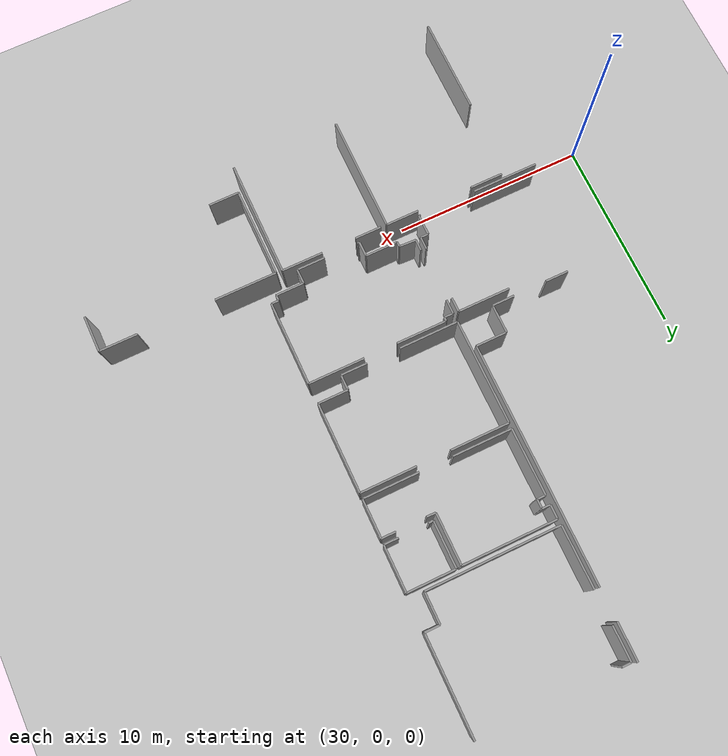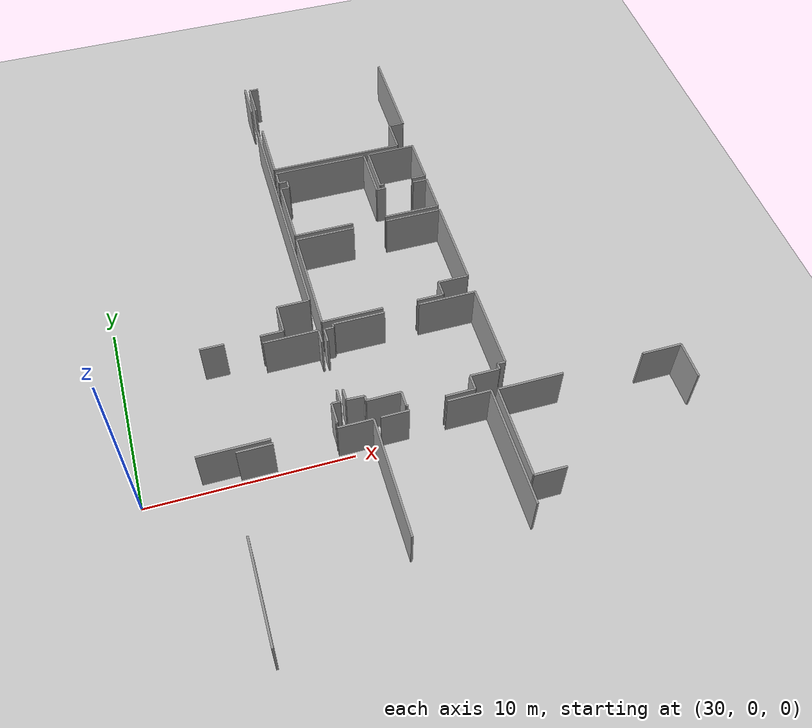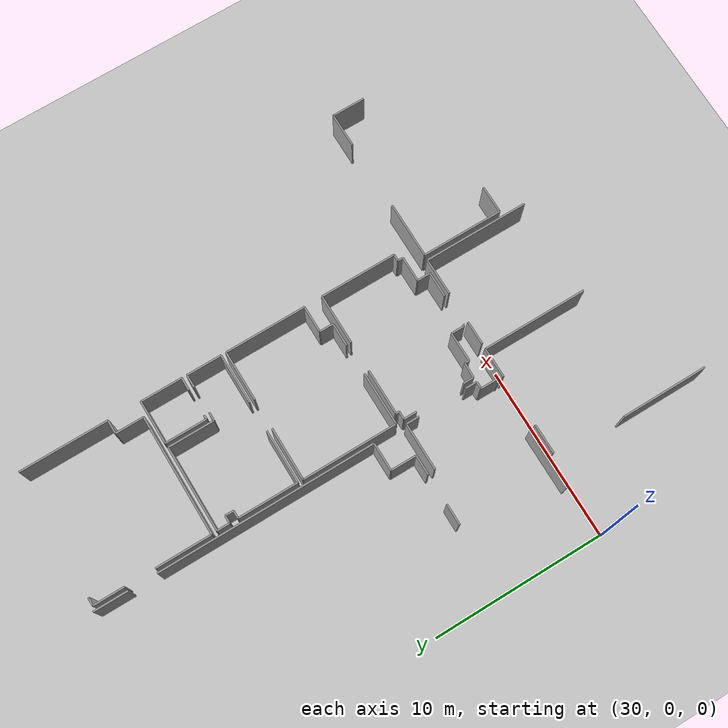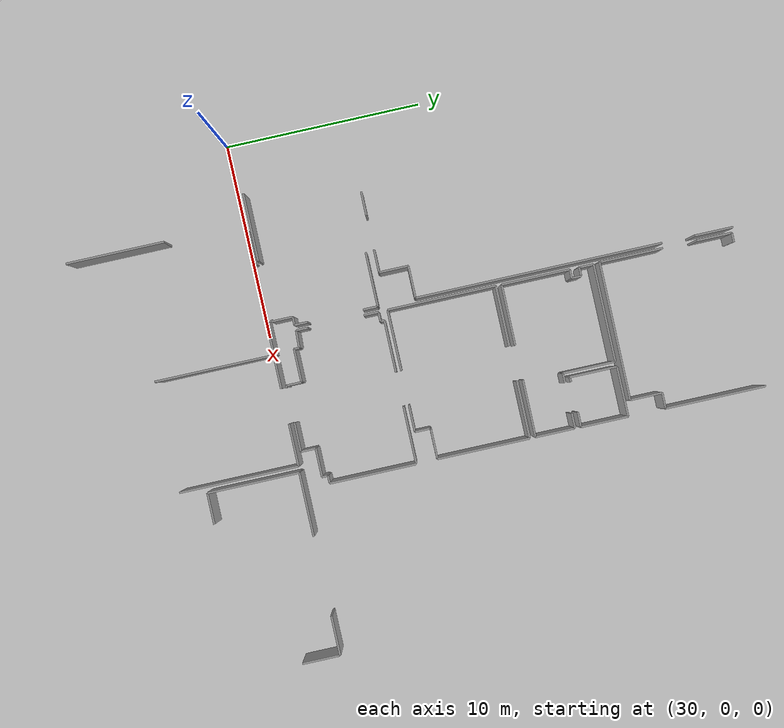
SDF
<sdf version="1.6">
 <world name="default">
  <model name="ground_plane">
   <static>1</static>
   <link name="link">
    <collision name="collision">
     <geometry><plane><normal>0 0 1</normal><size>100 100</size></plane></geometry>
     <surface><friction><ode><mu>100</mu><mu2>50</mu2></ode></friction></surface>
    </collision>
    <visual name="visual">
     <cast_shadows>0</cast_shadows>
     <geometry><plane><normal>0 0 1</normal><size>100 100</size></plane></geometry>
     <material>
      <script><uri>file://media/materials/scripts/gazebo.material</uri><name>Gazebo/Grey</name></script>
     </material>
    </visual>
   </link>
  </model>
  <model name="50057022">
   <static>1</static>
   <link name="Wall_114">
    <collision name="Wall_114_Collision">
     <geometry><box><size>3.20877912031 0.1 2.5</size></box></geometry>
     <pose>1.60438956016 0 1.25 0 0 0</pose>
    </collision>
    <visual name="Wall_114_Visual">
     <pose>1.60438956016 0 1.25 0 0 0</pose>
     <geometry><box><size>3.20877912031 0.1 2.5</size></box></geometry>
     <material>
      <script><uri>file://media/materials/scripts/gazebo.material</uri><name>Gazebo/Grey</name></script>
      <ambient>1 1 1 1</ambient>
     </material>
    </visual>
    <pose>96.568168972 -6.86328185397 0 0 0 1.57079632679</pose>
   </link>
   <link name="Wall_115">
    <collision name="Wall_115_Collision">
     <geometry><box><size>1.77326266643 0.1 2.5</size></box></geometry>
     <pose>0.886631333217 0 1.25 0 0 0</pose>
    </collision>
    <visual name="Wall_115_Visual">
     <pose>0.886631333217 0 1.25 0 0 0</pose>
     <geometry><box><size>1.77326266643 0.1 2.5</size></box></geometry>
     <material>
      <script><uri>file://media/materials/scripts/gazebo.material</uri><name>Gazebo/Grey</name></script>
      <ambient>1 1 1 1</ambient>
     </material>
    </visual>
    <pose>96.568168972 -1.93497529954 0 0 0 1.57079632679</pose>
   </link>
   <link name="Wall_116">
    <collision name="Wall_116_Collision">
     <geometry><box><size>0.474238771998 0.1 2.5</size></box></geometry>
     <pose>0.237119385999 0 1.25 0 0 0</pose>
    </collision>
    <visual name="Wall_116_Visual">
     <pose>0.237119385999 0 1.25 0 0 0</pose>
     <geometry><box><size>0.474238771998 0.1 2.5</size></box></geometry>
     <material>
      <script><uri>file://media/materials/scripts/gazebo.material</uri><name>Gazebo/Grey</name></script>
      <ambient>1 1 1 1</ambient>
     </material>
    </visual>
    <pose>96.568168972 -0.161712633102 0 0 0 0.0</pose>
   </link>
   <link name="Wall_117">
    <collision name="Wall_117_Collision">
     <geometry><box><size>5.08507656003 0.1 2.5</size></box></geometry>
     <pose>2.54253828002 0 1.25 0 0 0</pose>
    </collision>
    <visual name="Wall_117_Visual">
     <pose>2.54253828002 0 1.25 0 0 0</pose>
     <geometry><box><size>5.08507656003 0.1 2.5</size></box></geometry>
     <material>
      <script><uri>file://media/materials/scripts/gazebo.material</uri><name>Gazebo/Grey</name></script>
      <ambient>1 1 1 1</ambient>
     </material>
    </visual>
    <pose>104.33506452 -0.161712633102 0 0 0 -1.57079632679</pose>
   </link>
   <link name="Wall_118">
    <collision name="Wall_118_Collision">
     <geometry><box><size>0.788285719355 0.1 2.5</size></box></geometry>
     <pose>0.394142859678 0 1.25 0 0 0</pose>
    </collision>
    <visual name="Wall_118_Visual">
     <pose>0.394142859678 0 1.25 0 0 0</pose>
     <geometry><box><size>0.788285719355 0.1 2.5</size></box></geometry>
     <material>
      <script><uri>file://media/materials/scripts/gazebo.material</uri><name>Gazebo/Grey</name></script>
      <ambient>1 1 1 1</ambient>
     </material>
    </visual>
    <pose>104.33506452 -5.24678919314 0 0 0 3.14159265359</pose>
   </link>
   <link name="Wall_119">
    <collision name="Wall_119_Collision">
     <geometry><box><size>1.62574424564 0.1 2.5</size></box></geometry>
     <pose>0.81287212282 0 1.25 0 0 0</pose>
    </collision>
    <visual name="Wall_119_Visual">
     <pose>0.81287212282 0 1.25 0 0 0</pose>
     <geometry><box><size>1.62574424564 0.1 2.5</size></box></geometry>
     <material>
      <script><uri>file://media/materials/scripts/gazebo.material</uri><name>Gazebo/Grey</name></script>
      <ambient>1 1 1 1</ambient>
     </material>
    </visual>
    <pose>103.546778801 -5.24678919314 0 0 0 -1.57079632679</pose>
   </link>
   <link name="Wall_120">
    <collision name="Wall_120_Collision">
     <geometry><box><size>6.97861596142 0.1 2.5</size></box></geometry>
     <pose>3.48930798071 0 1.25 0 0 0</pose>
    </collision>
    <visual name="Wall_120_Visual">
     <pose>3.48930798071 0 1.25 0 0 0</pose>
     <geometry><box><size>6.97861596142 0.1 2.5</size></box></geometry>
     <material>
      <script><uri>file://media/materials/scripts/gazebo.material</uri><name>Gazebo/Grey</name></script>
      <ambient>1 1 1 1</ambient>
     </material>
    </visual>
    <pose>103.546778801 -6.87253343878 0 0 0 3.14026694838</pose>
   </link>
   <link name="Wall_124">
    <collision name="Wall_124_Collision">
     <geometry><box><size>1.95373193723 0.1 2.5</size></box></geometry>
     <pose>0.976865968616 0 1.25 0 0 0</pose>
    </collision>
    <visual name="Wall_124_Visual">
     <pose>0.976865968616 0 1.25 0 0 0</pose>
     <geometry><box><size>1.95373193723 0.1 2.5</size></box></geometry>
     <material>
      <script><uri>file://media/materials/scripts/gazebo.material</uri><name>Gazebo/Grey</name></script>
      <ambient>1 1 1 1</ambient>
     </material>
    </visual>
    <pose>96.3077305229 -0.0291488288508 0 0 0 -1.57079632679</pose>
   </link>
   <link name="Wall_125">
    <collision name="Wall_125_Collision">
     <geometry><box><size>12.5120714172 0.1 2.5</size></box></geometry>
     <pose>6.25603570858 0 1.25 0 0 0</pose>
    </collision>
    <visual name="Wall_125_Visual">
     <pose>6.25603570858 0 1.25 0 0 0</pose>
     <geometry><box><size>12.5120714172 0.1 2.5</size></box></geometry>
     <material>
      <script><uri>file://media/materials/scripts/gazebo.material</uri><name>Gazebo/Grey</name></script>
      <ambient>1 1 1 1</ambient>
     </material>
    </visual>
    <pose>96.3077305229 -3.62814205365 0 0 0 -1.57079632679</pose>
   </link>
   <link name="Wall_126">
    <collision name="Wall_126_Collision">
     <geometry><box><size>1.6278987243 0.1 2.5</size></box></geometry>
     <pose>0.813949362148 0 1.25 0 0 0</pose>
    </collision>
    <visual name="Wall_126_Visual">
     <pose>0.813949362148 0 1.25 0 0 0</pose>
     <geometry><box><size>1.6278987243 0.1 2.5</size></box></geometry>
     <material>
      <script><uri>file://media/materials/scripts/gazebo.material</uri><name>Gazebo/Grey</name></script>
      <ambient>1 1 1 1</ambient>
     </material>
    </visual>
    <pose>96.3077305229 -16.1402134708 0 0 0 3.14159265359</pose>
   </link>
   <link name="Wall_127">
    <collision name="Wall_127_Collision">
     <geometry><box><size>1.48278825023 0.1 2.5</size></box></geometry>
     <pose>0.741394125117 0 1.25 0 0 0</pose>
    </collision>
    <visual name="Wall_127_Visual">
     <pose>0.741394125117 0 1.25 0 0 0</pose>
     <geometry><box><size>1.48278825023 0.1 2.5</size></box></geometry>
     <material>
      <script><uri>file://media/materials/scripts/gazebo.material</uri><name>Gazebo/Grey</name></script>
      <ambient>1 1 1 1</ambient>
     </material>
    </visual>
    <pose>94.6798317986 -16.1402134708 0 0 0 -1.57079632679</pose>
   </link>
   <link name="Wall_128">
    <collision name="Wall_128_Collision">
     <geometry><box><size>1.15327975018 0.1 2.5</size></box></geometry>
     <pose>0.576639875091 0 1.25 0 0 0</pose>
    </collision>
    <visual name="Wall_128_Visual">
     <pose>0.576639875091 0 1.25 0 0 0</pose>
     <geometry><box><size>1.15327975018 0.1 2.5</size></box></geometry>
     <material>
      <script><uri>file://media/materials/scripts/gazebo.material</uri><name>Gazebo/Grey</name></script>
      <ambient>1 1 1 1</ambient>
     </material>
    </visual>
    <pose>94.6798317986 -17.623001721 0 0 0 3.14159265359</pose>
   </link>
   <link name="Wall_129">
    <collision name="Wall_129_Collision">
     <geometry><box><size>1.19827901955 0.1 2.5</size></box></geometry>
     <pose>0.599139509775 0 1.25 0 0 0</pose>
    </collision>
    <visual name="Wall_129_Visual">
     <pose>0.599139509775 0 1.25 0 0 0</pose>
     <geometry><box><size>1.19827901955 0.1 2.5</size></box></geometry>
     <material>
      <script><uri>file://media/materials/scripts/gazebo.material</uri><name>Gazebo/Grey</name></script>
      <ambient>1 1 1 1</ambient>
     </material>
    </visual>
    <pose>91.7787629237 -17.623001721 0 0 0 3.13778516273</pose>
   </link>
   <link name="Wall_130">
    <collision name="Wall_130_Collision">
     <geometry><box><size>3.45476988901 0.1 2.5</size></box></geometry>
     <pose>1.7273849445 0 1.25 0 0 0</pose>
    </collision>
    <visual name="Wall_130_Visual">
     <pose>1.7273849445 0 1.25 0 0 0</pose>
     <geometry><box><size>3.45476988901 0.1 2.5</size></box></geometry>
     <material>
      <script><uri>file://media/materials/scripts/gazebo.material</uri><name>Gazebo/Grey</name></script>
      <ambient>1 1 1 1</ambient>
     </material>
    </visual>
    <pose>96.5918682372 -11.8350581836 0 0 0 1.57079632679</pose>
   </link>
   <link name="Wall_131">
    <collision name="Wall_131_Collision">
     <geometry><box><size>0.444583006993 0.1 2.5</size></box></geometry>
     <pose>0.222291503497 0 1.25 0 0 0</pose>
    </collision>
    <visual name="Wall_131_Visual">
     <pose>0.222291503497 0 1.25 0 0 0</pose>
     <geometry><box><size>0.444583006993 0.1 2.5</size></box></geometry>
     <material>
      <script><uri>file://media/materials/scripts/gazebo.material</uri><name>Gazebo/Grey</name></script>
      <ambient>1 1 1 1</ambient>
     </material>
    </visual>
    <pose>96.5918682372 -8.38028829459 0 0 0 0.0</pose>
   </link>
   <link name="Wall_132">
    <collision name="Wall_132_Collision">
     <geometry><box><size>0.480955676037 0.1 2.5</size></box></geometry>
     <pose>0.240477838019 0 1.25 0 0 0</pose>
    </collision>
    <visual name="Wall_132_Visual">
     <pose>0.240477838019 0 1.25 0 0 0</pose>
     <geometry><box><size>0.480955676037 0.1 2.5</size></box></geometry>
     <material>
      <script><uri>file://media/materials/scripts/gazebo.material</uri><name>Gazebo/Grey</name></script>
      <ambient>1 1 1 1</ambient>
     </material>
    </visual>
    <pose>97.0364512441 -8.38028829459 0 0 0 1.57079632679</pose>
   </link>
   <link name="Wall_133">
    <collision name="Wall_133_Collision">
     <geometry><box><size>0.437232432761 0.1 2.5</size></box></geometry>
     <pose>0.218616216381 0 1.25 0 0 0</pose>
    </collision>
    <visual name="Wall_133_Visual">
     <pose>0.218616216381 0 1.25 0 0 0</pose>
     <geometry><box><size>0.437232432761 0.1 2.5</size></box></geometry>
     <material>
      <script><uri>file://media/materials/scripts/gazebo.material</uri><name>Gazebo/Grey</name></script>
      <ambient>1 1 1 1</ambient>
     </material>
    </visual>
    <pose>97.0364512441 -7.89933261855 0 0 0 3.14159265359</pose>
   </link>
   <link name="Wall_134">
    <collision name="Wall_134_Collision">
     <geometry><box><size>0.728720721269 0.1 2.5</size></box></geometry>
     <pose>0.364360360634 0 1.25 0 0 0</pose>
    </collision>
    <visual name="Wall_134_Visual">
     <pose>0.364360360634 0 1.25 0 0 0</pose>
     <geometry><box><size>0.728720721269 0.1 2.5</size></box></geometry>
     <material>
      <script><uri>file://media/materials/scripts/gazebo.material</uri><name>Gazebo/Grey</name></script>
      <ambient>1 1 1 1</ambient>
     </material>
    </visual>
    <pose>96.5992188114 -7.89933261855 0 0 0 1.57079632679</pose>
   </link>
   <link name="Wall_135">
    <collision name="Wall_135_Collision">
     <geometry><box><size>4.93160163943 0.1 2.5</size></box></geometry>
     <pose>2.46580081972 0 1.25 0 0 0</pose>
    </collision>
    <visual name="Wall_135_Visual">
     <pose>2.46580081972 0 1.25 0 0 0</pose>
     <geometry><box><size>4.93160163943 0.1 2.5</size></box></geometry>
     <material>
      <script><uri>file://media/materials/scripts/gazebo.material</uri><name>Gazebo/Grey</name></script>
      <ambient>1 1 1 1</ambient>
     </material>
    </visual>
    <pose>96.5992188114 -7.17061189728 0 0 0 0.0</pose>
   </link>
   <link name="Wall_136">
    <collision name="Wall_136_Collision">
     <geometry><box><size>2.65976726561 0.1 2.5</size></box></geometry>
     <pose>1.32988363281 0 1.25 0 0 0</pose>
    </collision>
    <visual name="Wall_136_Visual">
     <pose>1.32988363281 0 1.25 0 0 0</pose>
     <geometry><box><size>2.65976726561 0.1 2.5</size></box></geometry>
     <material>
      <script><uri>file://media/materials/scripts/gazebo.material</uri><name>Gazebo/Grey</name></script>
      <ambient>1 1 1 1</ambient>
     </material>
    </visual>
    <pose>101.530820451 -7.17061189728 0 0 0 -1.57079632679</pose>
   </link>
   <link name="Wall_137">
    <collision name="Wall_137_Collision">
     <geometry><box><size>0.483363622769 0.1 2.5</size></box></geometry>
     <pose>0.241681811384 0 1.25 0 0 0</pose>
    </collision>
    <visual name="Wall_137_Visual">
     <pose>0.241681811384 0 1.25 0 0 0</pose>
     <geometry><box><size>0.483363622769 0.1 2.5</size></box></geometry>
     <material>
      <script><uri>file://media/materials/scripts/gazebo.material</uri><name>Gazebo/Grey</name></script>
      <ambient>1 1 1 1</ambient>
     </material>
    </visual>
    <pose>101.530820451 -9.8303791629 0 0 0 0.0</pose>
   </link>
   <link name="Wall_138">
    <collision name="Wall_138_Collision">
     <geometry><box><size>0.749885305695 0.1 2.5</size></box></geometry>
     <pose>0.374942652848 0 1.25 0 0 0</pose>
    </collision>
    <visual name="Wall_138_Visual">
     <pose>0.374942652848 0 1.25 0 0 0</pose>
     <geometry><box><size>0.749885305695 0.1 2.5</size></box></geometry>
     <material>
      <script><uri>file://media/materials/scripts/gazebo.material</uri><name>Gazebo/Grey</name></script>
      <ambient>1 1 1 1</ambient>
     </material>
    </visual>
    <pose>103.564141364 -9.8303791629 0 0 0 0.0</pose>
   </link>
   <link name="Wall_139">
    <collision name="Wall_139_Collision">
     <geometry><box><size>2.00949491416 0.1 2.5</size></box></geometry>
     <pose>1.00474745708 0 1.25 0 0 0</pose>
    </collision>
    <visual name="Wall_139_Visual">
     <pose>1.00474745708 0 1.25 0 0 0</pose>
     <geometry><box><size>2.00949491416 0.1 2.5</size></box></geometry>
     <material>
      <script><uri>file://media/materials/scripts/gazebo.material</uri><name>Gazebo/Grey</name></script>
      <ambient>1 1 1 1</ambient>
     </material>
    </visual>
    <pose>104.31402667 -9.8303791629 0 0 0 -1.57079632679</pose>
   </link>
   <link name="Wall_140">
    <collision name="Wall_140_Collision">
     <geometry><box><size>2.90487089604 0.1 2.5</size></box></geometry>
     <pose>1.45243544802 0 1.25 0 0 0</pose>
    </collision>
    <visual name="Wall_140_Visual">
     <pose>1.45243544802 0 1.25 0 0 0</pose>
     <geometry><box><size>2.90487089604 0.1 2.5</size></box></geometry>
     <material>
      <script><uri>file://media/materials/scripts/gazebo.material</uri><name>Gazebo/Grey</name></script>
      <ambient>1 1 1 1</ambient>
     </material>
    </visual>
    <pose>104.31402667 -11.8398740771 0 0 0 3.14159265359</pose>
   </link>
   <link name="Wall_141">
    <collision name="Wall_141_Collision">
     <geometry><box><size>3.08471025596 0.1 2.5</size></box></geometry>
     <pose>1.54235512798 0 1.25 0 0 0</pose>
    </collision>
    <visual name="Wall_141_Visual">
     <pose>1.54235512798 0 1.25 0 0 0</pose>
     <geometry><box><size>3.08471025596 0.1 2.5</size></box></geometry>
     <material>
      <script><uri>file://media/materials/scripts/gazebo.material</uri><name>Gazebo/Grey</name></script>
      <ambient>1 1 1 1</ambient>
     </material>
    </visual>
    <pose>99.6765747338 -11.8398740771 0 0 0 3.14003143875</pose>
   </link>
   <link name="Wall_142">
    <collision name="Wall_142_Collision">
     <geometry><box><size>2.41491710327 0.1 2.5</size></box></geometry>
     <pose>1.20745855163 0 1.25 0 0 0</pose>
    </collision>
    <visual name="Wall_142_Visual">
     <pose>1.20745855163 0 1.25 0 0 0</pose>
     <geometry><box><size>2.41491710327 0.1 2.5</size></box></geometry>
     <material>
      <script><uri>file://media/materials/scripts/gazebo.material</uri><name>Gazebo/Grey</name></script>
      <ambient>1 1 1 1</ambient>
     </material>
    </visual>
    <pose>101.79252624 -9.55916832055 0 0 0 1.57079632679</pose>
   </link>
   <link name="Wall_143">
    <collision name="Wall_143_Collision">
     <geometry><box><size>2.52986487617 0.1 2.5</size></box></geometry>
     <pose>1.26493243808 0 1.25 0 0 0</pose>
    </collision>
    <visual name="Wall_143_Visual">
     <pose>1.26493243808 0 1.25 0 0 0</pose>
     <geometry><box><size>2.52986487617 0.1 2.5</size></box></geometry>
     <material>
      <script><uri>file://media/materials/scripts/gazebo.material</uri><name>Gazebo/Grey</name></script>
      <ambient>1 1 1 1</ambient>
     </material>
    </visual>
    <pose>101.79252624 -7.14425121728 0 0 0 0.0</pose>
   </link>
   <link name="Wall_144">
    <collision name="Wall_144_Collision">
     <geometry><box><size>2.38564154038 0.1 2.5</size></box></geometry>
     <pose>1.19282077019 0 1.25 0 0 0</pose>
    </collision>
    <visual name="Wall_144_Visual">
     <pose>1.19282077019 0 1.25 0 0 0</pose>
     <geometry><box><size>2.38564154038 0.1 2.5</size></box></geometry>
     <material>
      <script><uri>file://media/materials/scripts/gazebo.material</uri><name>Gazebo/Grey</name></script>
      <ambient>1 1 1 1</ambient>
     </material>
    </visual>
    <pose>104.322391116 -7.14425121728 0 0 0 -1.57079632679</pose>
   </link>
   <link name="Wall_145">
    <collision name="Wall_145_Collision">
     <geometry><box><size>0.747984295118 0.1 2.5</size></box></geometry>
     <pose>0.373992147559 0 1.25 0 0 0</pose>
    </collision>
    <visual name="Wall_145_Visual">
     <pose>0.373992147559 0 1.25 0 0 0</pose>
     <geometry><box><size>0.747984295118 0.1 2.5</size></box></geometry>
     <material>
      <script><uri>file://media/materials/scripts/gazebo.material</uri><name>Gazebo/Grey</name></script>
      <ambient>1 1 1 1</ambient>
     </material>
    </visual>
    <pose>104.322391116 -9.52989275766 0 0 0 3.14159265359</pose>
   </link>
   <link name="Wall_146">
    <collision name="Wall_146_Collision">
     <geometry><box><size>0.246216612026 0.1 2.5</size></box></geometry>
     <pose>0.123108306013 0 1.25 0 0 0</pose>
    </collision>
    <visual name="Wall_146_Visual">
     <pose>0.123108306013 0 1.25 0 0 0</pose>
     <geometry><box><size>0.246216612026 0.1 2.5</size></box></geometry>
     <material>
      <script><uri>file://media/materials/scripts/gazebo.material</uri><name>Gazebo/Grey</name></script>
      <ambient>1 1 1 1</ambient>
     </material>
    </visual>
    <pose>102.036996201 -9.52989275766 0 0 0 -3.02240903604</pose>
   </link>
   <link name="Wall_147">
    <collision name="Wall_147_Collision">
     <geometry><box><size>5.48302144086 0.1 2.5</size></box></geometry>
     <pose>2.74151072043 0 1.25 0 0 0</pose>
    </collision>
    <visual name="Wall_147_Visual">
     <pose>2.74151072043 0 1.25 0 0 0</pose>
     <geometry><box><size>5.48302144086 0.1 2.5</size></box></geometry>
     <material>
      <script><uri>file://media/materials/scripts/gazebo.material</uri><name>Gazebo/Grey</name></script>
      <ambient>1 1 1 1</ambient>
     </material>
    </visual>
    <pose>96.5794483014 -17.6184392957 0 0 0 1.57079632679</pose>
   </link>
   <link name="Wall_148">
    <collision name="Wall_148_Collision">
     <geometry><box><size>3.06214783779 0.1 2.5</size></box></geometry>
     <pose>1.5310739189 0 1.25 0 0 0</pose>
    </collision>
    <visual name="Wall_148_Visual">
     <pose>1.5310739189 0 1.25 0 0 0</pose>
     <geometry><box><size>3.06214783779 0.1 2.5</size></box></geometry>
     <material>
      <script><uri>file://media/materials/scripts/gazebo.material</uri><name>Gazebo/Grey</name></script>
      <ambient>1 1 1 1</ambient>
     </material>
    </visual>
    <pose>96.5794483014 -12.1354178548 0 0 0 0.0</pose>
   </link>
   <link name="Wall_149">
    <collision name="Wall_149_Collision">
     <geometry><box><size>2.92033244873 0.1 2.5</size></box></geometry>
     <pose>1.46016622436 0 1.25 0 0 0</pose>
    </collision>
    <visual name="Wall_149_Visual">
     <pose>1.46016622436 0 1.25 0 0 0</pose>
     <geometry><box><size>2.92033244873 0.1 2.5</size></box></geometry>
     <material>
      <script><uri>file://media/materials/scripts/gazebo.material</uri><name>Gazebo/Grey</name></script>
      <ambient>1 1 1 1</ambient>
     </material>
    </visual>
    <pose>101.396735838 -12.1354178548 0 0 0 0.0</pose>
   </link>
   <link name="Wall_150">
    <collision name="Wall_150_Collision">
     <geometry><box><size>4.67648601997 0.1 2.5</size></box></geometry>
     <pose>2.33824300998 0 1.25 0 0 0</pose>
    </collision>
    <visual name="Wall_150_Visual">
     <pose>2.33824300998 0 1.25 0 0 0</pose>
     <geometry><box><size>4.67648601997 0.1 2.5</size></box></geometry>
     <material>
      <script><uri>file://media/materials/scripts/gazebo.material</uri><name>Gazebo/Grey</name></script>
      <ambient>1 1 1 1</ambient>
     </material>
    </visual>
    <pose>104.317068287 -12.1354178548 0 0 0 -1.57079632679</pose>
   </link>
   <link name="Wall_151">
    <collision name="Wall_151_Collision">
     <geometry><box><size>1.55160483313 0.1 2.5</size></box></geometry>
     <pose>0.775802416565 0 1.25 0 0 0</pose>
    </collision>
    <visual name="Wall_151_Visual">
     <pose>0.775802416565 0 1.25 0 0 0</pose>
     <geometry><box><size>1.55160483313 0.1 2.5</size></box></geometry>
     <material>
      <script><uri>file://media/materials/scripts/gazebo.material</uri><name>Gazebo/Grey</name></script>
      <ambient>1 1 1 1</ambient>
     </material>
    </visual>
    <pose>104.317068287 -16.8119038748 0 0 0 3.14159265359</pose>
   </link>
   <link name="Wall_152">
    <collision name="Wall_152_Collision">
     <geometry><box><size>0.798424442434 0.1 2.5</size></box></geometry>
     <pose>0.399212221217 0 1.25 0 0 0</pose>
    </collision>
    <visual name="Wall_152_Visual">
     <pose>0.399212221217 0 1.25 0 0 0</pose>
     <geometry><box><size>0.798424442434 0.1 2.5</size></box></geometry>
     <material>
      <script><uri>file://media/materials/scripts/gazebo.material</uri><name>Gazebo/Grey</name></script>
      <ambient>1 1 1 1</ambient>
     </material>
    </visual>
    <pose>102.765463454 -16.8119038748 0 0 0 -1.57079632679</pose>
   </link>
   <link name="Wall_153">
    <collision name="Wall_153_Collision">
     <geometry><box><size>1.35960276483 0.1 2.5</size></box></geometry>
     <pose>0.679801382415 0 1.25 0 0 0</pose>
    </collision>
    <visual name="Wall_153_Visual">
     <pose>0.679801382415 0 1.25 0 0 0</pose>
     <geometry><box><size>1.35960276483 0.1 2.5</size></box></geometry>
     <material>
      <script><uri>file://media/materials/scripts/gazebo.material</uri><name>Gazebo/Grey</name></script>
      <ambient>1 1 1 1</ambient>
     </material>
    </visual>
    <pose>102.765463454 -17.6103283172 0 0 0 3.14159265359</pose>
   </link>
   <link name="Wall_154">
    <collision name="Wall_154_Collision">
     <geometry><box><size>3.08712509861 0.1 2.5</size></box></geometry>
     <pose>1.5435625493 0 1.25 0 0 0</pose>
    </collision>
    <visual name="Wall_154_Visual">
     <pose>1.5435625493 0 1.25 0 0 0</pose>
     <geometry><box><size>3.08712509861 0.1 2.5</size></box></geometry>
     <material>
      <script><uri>file://media/materials/scripts/gazebo.material</uri><name>Gazebo/Grey</name></script>
      <ambient>1 1 1 1</ambient>
     </material>
    </visual>
    <pose>99.6665627448 -17.6103283172 0 0 0 -3.13896529398</pose>
   </link>
   <link name="Wall_526">
    <collision name="Wall_526_Collision">
     <geometry><box><size>4.98444973348 0.1 2.5</size></box></geometry>
     <pose>2.49222486674 0 1.25 0 0 0</pose>
    </collision>
    <visual name="Wall_526_Visual">
     <pose>2.49222486674 0 1.25 0 0 0</pose>
     <geometry><box><size>4.98444973348 0.1 2.5</size></box></geometry>
     <material>
      <script><uri>file://media/materials/scripts/gazebo.material</uri><name>Gazebo/Grey</name></script>
      <ambient>1 1 1 1</ambient>
     </material>
    </visual>
    <pose>90.8860483566 -27.6768129938 0 0 0 -1.57079632679</pose>
   </link>
   <link name="Wall_547">
    <collision name="Wall_547_Collision">
     <geometry><box><size>1.71040258335 0.1 2.5</size></box></geometry>
     <pose>0.855201291673 0 1.25 0 0 0</pose>
    </collision>
    <visual name="Wall_547_Visual">
     <pose>0.855201291673 0 1.25 0 0 0</pose>
     <geometry><box><size>1.71040258335 0.1 2.5</size></box></geometry>
     <material>
      <script><uri>file://media/materials/scripts/gazebo.material</uri><name>Gazebo/Grey</name></script>
      <ambient>1 1 1 1</ambient>
     </material>
    </visual>
    <pose>91.1698058688 -23.5921749335 0 0 0 0.0</pose>
   </link>
   <link name="Wall_548">
    <collision name="Wall_548_Collision">
     <geometry><box><size>1.72358292335 0.1 2.5</size></box></geometry>
     <pose>0.861791461674 0 1.25 0 0 0</pose>
    </collision>
    <visual name="Wall_548_Visual">
     <pose>0.861791461674 0 1.25 0 0 0</pose>
     <geometry><box><size>1.72358292335 0.1 2.5</size></box></geometry>
     <material>
      <script><uri>file://media/materials/scripts/gazebo.material</uri><name>Gazebo/Grey</name></script>
      <ambient>1 1 1 1</ambient>
     </material>
    </visual>
    <pose>95.8204381449 -23.5921749335 0 0 0 0.0</pose>
   </link>
   <link name="Wall_549">
    <collision name="Wall_549_Collision">
     <geometry><box><size>6.04622750788 0.1 2.5</size></box></geometry>
     <pose>3.02311375394 0 1.25 0 0 0</pose>
    </collision>
    <visual name="Wall_549_Visual">
     <pose>3.02311375394 0 1.25 0 0 0</pose>
     <geometry><box><size>6.04622750788 0.1 2.5</size></box></geometry>
     <material>
      <script><uri>file://media/materials/scripts/gazebo.material</uri><name>Gazebo/Grey</name></script>
      <ambient>1 1 1 1</ambient>
     </material>
    </visual>
    <pose>97.5440210683 -23.5921749335 0 0 0 -1.57079632679</pose>
   </link>
   <link name="Wall_566">
    <collision name="Wall_566_Collision">
     <geometry><box><size>1.58417548102 0.1 2.5</size></box></geometry>
     <pose>0.79208774051 0 1.25 0 0 0</pose>
    </collision>
    <visual name="Wall_566_Visual">
     <pose>0.79208774051 0 1.25 0 0 0</pose>
     <geometry><box><size>1.58417548102 0.1 2.5</size></box></geometry>
     <material>
      <script><uri>file://media/materials/scripts/gazebo.material</uri><name>Gazebo/Grey</name></script>
      <ambient>1 1 1 1</ambient>
     </material>
    </visual>
    <pose>105.072022954 -28.2940077612 0 0 0 3.14159265359</pose>
   </link>
   <link name="Wall_567">
    <collision name="Wall_567_Collision">
     <geometry><box><size>4.66381261612 0.1 2.5</size></box></geometry>
     <pose>2.33190630806 0 1.25 0 0 0</pose>
    </collision>
    <visual name="Wall_567_Visual">
     <pose>2.33190630806 0 1.25 0 0 0</pose>
     <geometry><box><size>4.66381261612 0.1 2.5</size></box></geometry>
     <material>
      <script><uri>file://media/materials/scripts/gazebo.material</uri><name>Gazebo/Grey</name></script>
      <ambient>1 1 1 1</ambient>
     </material>
    </visual>
    <pose>103.487847473 -28.2940077612 0 0 0 1.57079632679</pose>
   </link>
   <link name="Wall_568">
    <collision name="Wall_568_Collision">
     <geometry><box><size>3.24439138513 0.1 2.5</size></box></geometry>
     <pose>1.62219569256 0 1.25 0 0 0</pose>
    </collision>
    <visual name="Wall_568_Visual">
     <pose>1.62219569256 0 1.25 0 0 0</pose>
     <geometry><box><size>3.24439138513 0.1 2.5</size></box></geometry>
     <material>
      <script><uri>file://media/materials/scripts/gazebo.material</uri><name>Gazebo/Grey</name></script>
      <ambient>1 1 1 1</ambient>
     </material>
    </visual>
    <pose>103.487847473 -23.6301951451 0 0 0 0.0</pose>
   </link>
   <link name="Wall_569">
    <collision name="Wall_569_Collision">
     <geometry><box><size>1.98972440416 0.1 2.5</size></box></geometry>
     <pose>0.99486220208 0 1.25 0 0 0</pose>
    </collision>
    <visual name="Wall_569_Visual">
     <pose>0.99486220208 0 1.25 0 0 0</pose>
     <geometry><box><size>1.98972440416 0.1 2.5</size></box></geometry>
     <material>
      <script><uri>file://media/materials/scripts/gazebo.material</uri><name>Gazebo/Grey</name></script>
      <ambient>1 1 1 1</ambient>
     </material>
    </visual>
    <pose>110.762381282 -23.6301951451 0 0 0 0.0</pose>
   </link>
   <link name="Wall_570">
    <collision name="Wall_570_Collision">
     <geometry><box><size>1.90101057722 0.1 2.5</size></box></geometry>
     <pose>0.950505288611 0 1.25 0 0 0</pose>
    </collision>
    <visual name="Wall_570_Visual">
     <pose>0.950505288611 0 1.25 0 0 0</pose>
     <geometry><box><size>1.90101057722 0.1 2.5</size></box></geometry>
     <material>
      <script><uri>file://media/materials/scripts/gazebo.material</uri><name>Gazebo/Grey</name></script>
      <ambient>1 1 1 1</ambient>
     </material>
    </visual>
    <pose>112.752105686 -23.6301951451 0 0 0 -1.57079632679</pose>
   </link>
   <link name="Wall_579">
    <collision name="Wall_579_Collision">
     <geometry><box><size>1.3687276156 0.1 2.5</size></box></geometry>
     <pose>0.6843638078 0 1.25 0 0 0</pose>
    </collision>
    <visual name="Wall_579_Visual">
     <pose>0.6843638078 0 1.25 0 0 0</pose>
     <geometry><box><size>1.3687276156 0.1 2.5</size></box></geometry>
     <material>
      <script><uri>file://media/materials/scripts/gazebo.material</uri><name>Gazebo/Grey</name></script>
      <ambient>1 1 1 1</ambient>
     </material>
    </visual>
    <pose>97.8608561645 -23.6048483374 0 0 0 0.0</pose>
   </link>
   <link name="Wall_580">
    <collision name="Wall_580_Collision">
     <geometry><box><size>2.13939730361 0.1 2.5</size></box></geometry>
     <pose>1.0696986518 0 1.25 0 0 0</pose>
    </collision>
    <visual name="Wall_580_Visual">
     <pose>1.0696986518 0 1.25 0 0 0</pose>
     <geometry><box><size>2.13939730361 0.1 2.5</size></box></geometry>
     <material>
      <script><uri>file://media/materials/scripts/gazebo.material</uri><name>Gazebo/Grey</name></script>
      <ambient>1 1 1 1</ambient>
     </material>
    </visual>
    <pose>101.029460595 -23.6048483374 0 0 0 0.0</pose>
   </link>
   <link name="Wall_581">
    <collision name="Wall_581_Collision">
     <geometry><box><size>6.03355410403 0.1 2.5</size></box></geometry>
     <pose>3.01677705201 0 1.25 0 0 0</pose>
    </collision>
    <visual name="Wall_581_Visual">
     <pose>3.01677705201 0 1.25 0 0 0</pose>
     <geometry><box><size>6.03355410403 0.1 2.5</size></box></geometry>
     <material>
      <script><uri>file://media/materials/scripts/gazebo.material</uri><name>Gazebo/Grey</name></script>
      <ambient>1 1 1 1</ambient>
     </material>
    </visual>
    <pose>103.168857898 -23.6048483374 0 0 0 -1.57079632679</pose>
   </link>
   <link name="Wall_583">
    <collision name="Wall_583_Collision">
     <geometry><box><size>0.59755099144 0.1 2.5</size></box></geometry>
     <pose>0.29877549572 0 1.25 0 0 0</pose>
    </collision>
    <visual name="Wall_583_Visual">
     <pose>0.29877549572 0 1.25 0 0 0</pose>
     <geometry><box><size>0.59755099144 0.1 2.5</size></box></geometry>
     <material>
      <script><uri>file://media/materials/scripts/gazebo.material</uri><name>Gazebo/Grey</name></script>
      <ambient>1 1 1 1</ambient>
     </material>
    </visual>
    <pose>96.584644397 -22.2551308275 0 0 0 1.57079632679</pose>
   </link>
   <link name="Wall_584">
    <collision name="Wall_584_Collision">
     <geometry><box><size>0.738352508193 0.1 2.5</size></box></geometry>
     <pose>0.369176254097 0 1.25 0 0 0</pose>
    </collision>
    <visual name="Wall_584_Visual">
     <pose>0.369176254097 0 1.25 0 0 0</pose>
     <geometry><box><size>0.738352508193 0.1 2.5</size></box></geometry>
     <material>
      <script><uri>file://media/materials/scripts/gazebo.material</uri><name>Gazebo/Grey</name></script>
      <ambient>1 1 1 1</ambient>
     </material>
    </visual>
    <pose>96.584644397 -18.8220324591 0 0 0 1.57079632679</pose>
   </link>
   <link name="Wall_585">
    <collision name="Wall_585_Collision">
     <geometry><box><size>0.470056548728 0.1 2.5</size></box></geometry>
     <pose>0.235028274364 0 1.25 0 0 0</pose>
    </collision>
    <visual name="Wall_585_Visual">
     <pose>0.235028274364 0 1.25 0 0 0</pose>
     <geometry><box><size>0.470056548728 0.1 2.5</size></box></geometry>
     <material>
      <script><uri>file://media/materials/scripts/gazebo.material</uri><name>Gazebo/Grey</name></script>
      <ambient>1 1 1 1</ambient>
     </material>
    </visual>
    <pose>96.584644397 -18.0836799509 0 0 0 0.0</pose>
   </link>
   <link name="Wall_586">
    <collision name="Wall_586_Collision">
     <geometry><box><size>0.198338770224 0.1 2.5</size></box></geometry>
     <pose>0.0991693851118 0 1.25 0 0 0</pose>
    </collision>
    <visual name="Wall_586_Visual">
     <pose>0.0991693851118 0 1.25 0 0 0</pose>
     <geometry><box><size>0.198338770224 0.1 2.5</size></box></geometry>
     <material>
      <script><uri>file://media/materials/scripts/gazebo.material</uri><name>Gazebo/Grey</name></script>
      <ambient>1 1 1 1</ambient>
     </material>
    </visual>
    <pose>97.0547009457 -18.0836799509 0 0 0 1.57079632679</pose>
   </link>
   <link name="Wall_587">
    <collision name="Wall_587_Collision">
     <geometry><box><size>2.62288766041 0.1 2.5</size></box></geometry>
     <pose>1.31144383021 0 1.25 0 0 0</pose>
    </collision>
    <visual name="Wall_587_Visual">
     <pose>1.31144383021 0 1.25 0 0 0</pose>
     <geometry><box><size>2.62288766041 0.1 2.5</size></box></geometry>
     <material>
      <script><uri>file://media/materials/scripts/gazebo.material</uri><name>Gazebo/Grey</name></script>
      <ambient>1 1 1 1</ambient>
     </material>
    </visual>
    <pose>97.0547009457 -17.8853411807 0 0 0 0.0</pose>
   </link>
   <link name="Wall_588">
    <collision name="Wall_588_Collision">
     <geometry><box><size>2.9162769595 0.1 2.5</size></box></geometry>
     <pose>1.45813847975 0 1.25 0 0 0</pose>
    </collision>
    <visual name="Wall_588_Visual">
     <pose>1.45813847975 0 1.25 0 0 0</pose>
     <geometry><box><size>2.9162769595 0.1 2.5</size></box></geometry>
     <material>
      <script><uri>file://media/materials/scripts/gazebo.material</uri><name>Gazebo/Grey</name></script>
      <ambient>1 1 1 1</ambient>
     </material>
    </visual>
    <pose>101.418280625 -17.8853411807 0 0 0 0.0</pose>
   </link>
   <link name="Wall_589">
    <collision name="Wall_589_Collision">
     <geometry><box><size>4.39019382704 0.1 2.5</size></box></geometry>
     <pose>2.19509691352 0 1.25 0 0 0</pose>
    </collision>
    <visual name="Wall_589_Visual">
     <pose>2.19509691352 0 1.25 0 0 0</pose>
     <geometry><box><size>4.39019382704 0.1 2.5</size></box></geometry>
     <material>
      <script><uri>file://media/materials/scripts/gazebo.material</uri><name>Gazebo/Grey</name></script>
      <ambient>1 1 1 1</ambient>
     </material>
    </visual>
    <pose>104.334557584 -17.8853411807 0 0 0 -1.57079632679</pose>
   </link>
   <link name="Wall_590">
    <collision name="Wall_590_Collision">
     <geometry><box><size>0.385524945061 0.1 2.5</size></box></geometry>
     <pose>0.19276247253 0 1.25 0 0 0</pose>
    </collision>
    <visual name="Wall_590_Visual">
     <pose>0.19276247253 0 1.25 0 0 0</pose>
     <geometry><box><size>0.385524945061 0.1 2.5</size></box></geometry>
     <material>
      <script><uri>file://media/materials/scripts/gazebo.material</uri><name>Gazebo/Grey</name></script>
      <ambient>1 1 1 1</ambient>
     </material>
    </visual>
    <pose>104.334557584 -22.2755350077 0 0 0 3.14159265359</pose>
   </link>
   <link name="Wall_591">
    <collision name="Wall_591_Collision">
     <geometry><box><size>0.301627011586 0.1 2.5</size></box></geometry>
     <pose>0.150813505793 0 1.25 0 0 0</pose>
    </collision>
    <visual name="Wall_591_Visual">
     <pose>0.150813505793 0 1.25 0 0 0</pose>
     <geometry><box><size>0.301627011586 0.1 2.5</size></box></geometry>
     <material>
      <script><uri>file://media/materials/scripts/gazebo.material</uri><name>Gazebo/Grey</name></script>
      <ambient>1 1 1 1</ambient>
     </material>
    </visual>
    <pose>103.949032639 -22.2755350077 0 0 0 -1.57079632679</pose>
   </link>
   <link name="Wall_592">
    <collision name="Wall_592_Collision">
     <geometry><box><size>1.45807511273 0.1 2.5</size></box></geometry>
     <pose>0.729037556365 0 1.25 0 0 0</pose>
    </collision>
    <visual name="Wall_592_Visual">
     <pose>0.729037556365 0 1.25 0 0 0</pose>
     <geometry><box><size>1.45807511273 0.1 2.5</size></box></geometry>
     <material>
      <script><uri>file://media/materials/scripts/gazebo.material</uri><name>Gazebo/Grey</name></script>
      <ambient>1 1 1 1</ambient>
     </material>
    </visual>
    <pose>103.949032639 -22.5771620193 0 0 0 3.14159265359</pose>
   </link>
   <link name="Wall_593">
    <collision name="Wall_593_Collision">
     <geometry><box><size>0.754320997042 0.1 2.5</size></box></geometry>
     <pose>0.377160498521 0 1.25 0 0 0</pose>
    </collision>
    <visual name="Wall_593_Visual">
     <pose>0.377160498521 0 1.25 0 0 0</pose>
     <geometry><box><size>0.754320997042 0.1 2.5</size></box></geometry>
     <material>
      <script><uri>file://media/materials/scripts/gazebo.material</uri><name>Gazebo/Grey</name></script>
      <ambient>1 1 1 1</ambient>
     </material>
    </visual>
    <pose>102.490957526 -22.5771620193 0 0 0 -1.57079632679</pose>
   </link>
   <link name="Wall_594">
    <collision name="Wall_594_Collision">
     <geometry><box><size>1.45820184677 0.1 2.5</size></box></geometry>
     <pose>0.729100923384 0 1.25 0 0 0</pose>
    </collision>
    <visual name="Wall_594_Visual">
     <pose>0.729100923384 0 1.25 0 0 0</pose>
     <geometry><box><size>1.45820184677 0.1 2.5</size></box></geometry>
     <material>
      <script><uri>file://media/materials/scripts/gazebo.material</uri><name>Gazebo/Grey</name></script>
      <ambient>1 1 1 1</ambient>
     </material>
    </visual>
    <pose>102.490957526 -23.3314830164 0 0 0 3.14159265359</pose>
   </link>
   <link name="Wall_595">
    <collision name="Wall_595_Collision">
     <geometry><box><size>0.105442720017 0.1 2.5</size></box></geometry>
     <pose>0.0527213600083 0 1.25 0 0 0</pose>
    </collision>
    <visual name="Wall_595_Visual">
     <pose>0.0527213600083 0 1.25 0 0 0</pose>
     <geometry><box><size>0.105442720017 0.1 2.5</size></box></geometry>
     <material>
      <script><uri>file://media/materials/scripts/gazebo.material</uri><name>Gazebo/Grey</name></script>
      <ambient>1 1 1 1</ambient>
     </material>
    </visual>
    <pose>99.2530295772 -23.3314830164 0 0 0 3.14159265359</pose>
   </link>
   <link name="Wall_596">
    <collision name="Wall_596_Collision">
     <geometry><box><size>0.7778935282 0.1 2.5</size></box></geometry>
     <pose>0.3889467641 0 1.25 0 0 0</pose>
    </collision>
    <visual name="Wall_596_Visual">
     <pose>0.3889467641 0 1.25 0 0 0</pose>
     <geometry><box><size>0.7778935282 0.1 2.5</size></box></geometry>
     <material>
      <script><uri>file://media/materials/scripts/gazebo.material</uri><name>Gazebo/Grey</name></script>
      <ambient>1 1 1 1</ambient>
     </material>
    </visual>
    <pose>99.1475868572 -23.3314830164 0 0 0 1.57079632679</pose>
   </link>
   <link name="Wall_597">
    <collision name="Wall_597_Collision">
     <geometry><box><size>1.68657658411 0.1 2.5</size></box></geometry>
     <pose>0.843288292056 0 1.25 0 0 0</pose>
    </collision>
    <visual name="Wall_597_Visual">
     <pose>0.843288292056 0 1.25 0 0 0</pose>
     <geometry><box><size>1.68657658411 0.1 2.5</size></box></geometry>
     <material>
      <script><uri>file://media/materials/scripts/gazebo.material</uri><name>Gazebo/Grey</name></script>
      <ambient>1 1 1 1</ambient>
     </material>
    </visual>
    <pose>99.1475868572 -22.5535894882 0 0 0 3.14159265359</pose>
   </link>
   <link name="Wall_598">
    <collision name="Wall_598_Collision">
     <geometry><box><size>0.258664172541 0.1 2.5</size></box></geometry>
     <pose>0.12933208627 0 1.25 0 0 0</pose>
    </collision>
    <visual name="Wall_598_Visual">
     <pose>0.12933208627 0 1.25 0 0 0</pose>
     <geometry><box><size>0.258664172541 0.1 2.5</size></box></geometry>
     <material>
      <script><uri>file://media/materials/scripts/gazebo.material</uri><name>Gazebo/Grey</name></script>
      <ambient>1 1 1 1</ambient>
     </material>
    </visual>
    <pose>97.4610102731 -22.5535894882 0 0 0 1.57079632679</pose>
   </link>
   <link name="Wall_599">
    <collision name="Wall_599_Collision">
     <geometry><box><size>0.877268915484 0.1 2.5</size></box></geometry>
     <pose>0.438634457742 0 1.25 0 0 0</pose>
    </collision>
    <visual name="Wall_599_Visual">
     <pose>0.438634457742 0 1.25 0 0 0</pose>
     <geometry><box><size>0.877268915484 0.1 2.5</size></box></geometry>
     <material>
      <script><uri>file://media/materials/scripts/gazebo.material</uri><name>Gazebo/Grey</name></script>
      <ambient>1 1 1 1</ambient>
     </material>
    </visual>
    <pose>97.4610102731 -22.2949253156 0 0 0 3.09621529267</pose>
   </link>
   <link name="Wall_608">
    <collision name="Wall_608_Collision">
     <geometry><box><size>2.73998991197 0.1 2.5</size></box></geometry>
     <pose>1.36999495599 0 1.25 0 0 0</pose>
    </collision>
    <visual name="Wall_608_Visual">
     <pose>1.36999495599 0 1.25 0 0 0</pose>
     <geometry><box><size>2.73998991197 0.1 2.5</size></box></geometry>
     <material>
      <script><uri>file://media/materials/scripts/gazebo.material</uri><name>Gazebo/Grey</name></script>
      <ambient>1 1 1 1</ambient>
     </material>
    </visual>
    <pose>93.5677406109 -18.054404388 0 0 0 0.0</pose>
   </link>
   <link name="Wall_609">
    <collision name="Wall_609_Collision">
     <geometry><box><size>0.746590220695 0.1 2.5</size></box></geometry>
     <pose>0.373295110347 0 1.25 0 0 0</pose>
    </collision>
    <visual name="Wall_609_Visual">
     <pose>0.373295110347 0 1.25 0 0 0</pose>
     <geometry><box><size>0.746590220695 0.1 2.5</size></box></geometry>
     <material>
      <script><uri>file://media/materials/scripts/gazebo.material</uri><name>Gazebo/Grey</name></script>
      <ambient>1 1 1 1</ambient>
     </material>
    </visual>
    <pose>96.3077305229 -18.054404388 0 0 0 -1.57079632679</pose>
   </link>
   <link name="Wall_610">
    <collision name="Wall_610_Collision">
     <geometry><box><size>0.659017000104 0.1 2.5</size></box></geometry>
     <pose>0.329508500052 0 1.25 0 0 0</pose>
    </collision>
    <visual name="Wall_610_Visual">
     <pose>0.329508500052 0 1.25 0 0 0</pose>
     <geometry><box><size>0.659017000104 0.1 2.5</size></box></geometry>
     <material>
      <script><uri>file://media/materials/scripts/gazebo.material</uri><name>Gazebo/Grey</name></script>
      <ambient>1 1 1 1</ambient>
     </material>
    </visual>
    <pose>96.3077305229 -21.6151239332 0 0 0 -1.57079632679</pose>
   </link>
   <link name="Wall_611">
    <collision name="Wall_611_Collision">
     <geometry><box><size>0.411251954873 0.1 2.5</size></box></geometry>
     <pose>0.205625977436 0 1.25 0 0 0</pose>
    </collision>
    <visual name="Wall_611_Visual">
     <pose>0.205625977436 0 1.25 0 0 0</pose>
     <geometry><box><size>0.411251954873 0.1 2.5</size></box></geometry>
     <material>
      <script><uri>file://media/materials/scripts/gazebo.material</uri><name>Gazebo/Grey</name></script>
      <ambient>1 1 1 1</ambient>
     </material>
    </visual>
    <pose>96.3077305229 -22.2741409333 0 0 0 3.14159265359</pose>
   </link>
   <link name="Wall_612">
    <collision name="Wall_612_Collision">
     <geometry><box><size>1.06456592324 0.1 2.5</size></box></geometry>
     <pose>0.532282961622 0 1.25 0 0 0</pose>
    </collision>
    <visual name="Wall_612_Visual">
     <pose>0.532282961622 0 1.25 0 0 0</pose>
     <geometry><box><size>1.06456592324 0.1 2.5</size></box></geometry>
     <material>
      <script><uri>file://media/materials/scripts/gazebo.material</uri><name>Gazebo/Grey</name></script>
      <ambient>1 1 1 1</ambient>
     </material>
    </visual>
    <pose>95.896478568 -22.2741409333 0 0 0 -1.57079632679</pose>
   </link>
   <link name="Wall_613">
    <collision name="Wall_613_Collision">
     <geometry><box><size>0.0887138269371 0.1 2.5</size></box></geometry>
     <pose>0.0443569134685 0 1.25 0 0 0</pose>
    </collision>
    <visual name="Wall_613_Visual">
     <pose>0.0443569134685 0 1.25 0 0 0</pose>
     <geometry><box><size>0.0887138269371 0.1 2.5</size></box></geometry>
     <material>
      <script><uri>file://media/materials/scripts/gazebo.material</uri><name>Gazebo/Grey</name></script>
      <ambient>1 1 1 1</ambient>
     </material>
    </visual>
    <pose>95.896478568 -23.3387068566 0 0 0 3.14159265359</pose>
   </link>
   <link name="Wall_614">
    <collision name="Wall_614_Collision">
     <geometry><box><size>3.43842119804 0.1 2.5</size></box></geometry>
     <pose>1.71921059902 0 1.25 0 0 0</pose>
    </collision>
    <visual name="Wall_614_Visual">
     <pose>1.71921059902 0 1.25 0 0 0</pose>
     <geometry><box><size>3.43842119804 0.1 2.5</size></box></geometry>
     <material>
      <script><uri>file://media/materials/scripts/gazebo.material</uri><name>Gazebo/Grey</name></script>
      <ambient>1 1 1 1</ambient>
     </material>
    </visual>
    <pose>92.8339505281 -23.3387068566 0 0 0 3.14159265359</pose>
   </link>
   <pose>-56.55 23.8342557037 0 0 0 0</pose>
  </model>
 </world>
</sdf>
